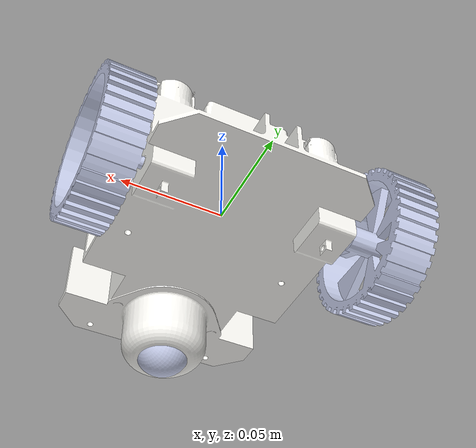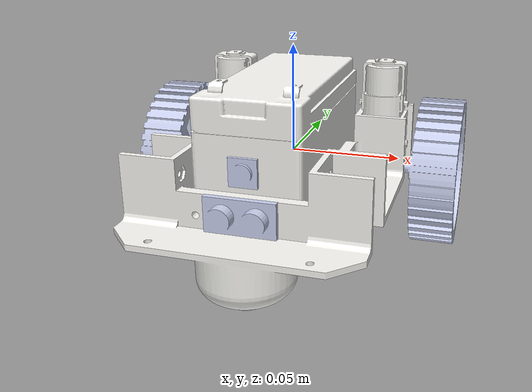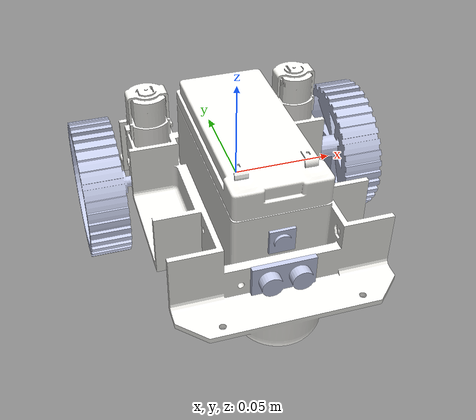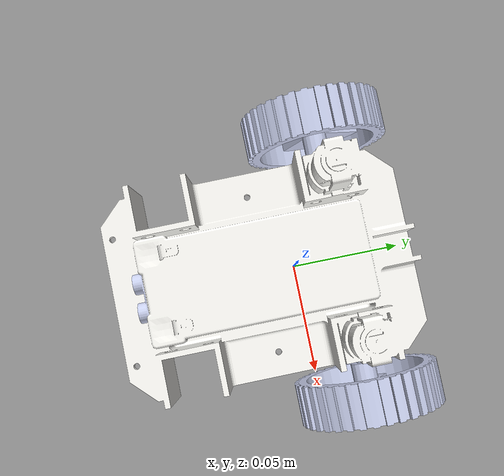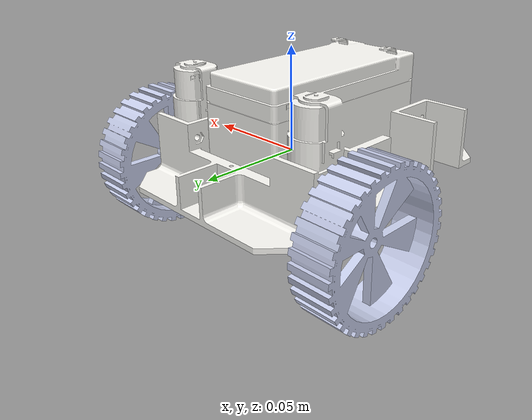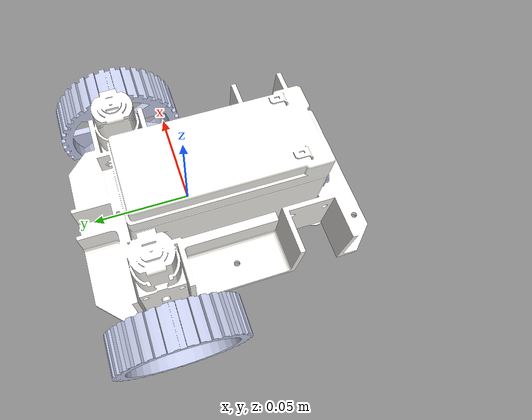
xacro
<?xml version="1.0" encoding="utf-8"?>
<robot xmlns:xacro="http://ros.org/wiki/xacro" name="uavcar">
<xacro:include filename="$(find uavionics_workshop2)/urdf/gazebo_plugin.xacro" />

  <material name = "black">
		<color rgba="0 0 0 1"/>
	</material>
	<material name = "red">
		<color rgba="1 0 0 1"/>
	</material>
	<material name = "green">
		<color rgba="0 1 0 1"/>
	</material>
	<material name = "blue">
		<color rgba="0 0 1 1"/>
	</material>
	<material name = "yellow">
		<color rgba="1 1 0 1"/>
	</material>
	<material name = "white">
		<color rgba="1 1 1 1"/>
	</material>

  <link
    name="base_link">
    <inertial>
      <origin
        xyz="-3.28475455401397E-06 -0.000998760054247713 0.00060735367389868"
        rpy="0 0 0" />
      <mass
        value="0.38105520656002" />
      <inertia
        ixx="0.000472947077248781"
        ixy="1.2692018595379E-09"
        ixz="7.75196238075727E-11"
        iyy="0.00034676867412049"
        iyz="-1.5941325677433E-05"
        izz="0.000750964235400176" />
    </inertial>
    <visual>
      <origin
        xyz="0 -0.013 -0.007"
        rpy="0 0 0" />
      <geometry>
        <mesh
          filename="package://uavionics_workshop2/meshes/base_link_visual.STL" />
      </geometry>
      <material
        name="">
        <color
          rgba="0.984313725490196 0.980392156862745 0.96078431372549 1" />
      </material>
    </visual>
    <collision>
      <origin
        xyz="0 0 0"
        rpy="0 0 0" />
      <geometry>
        <mesh
          filename="package://uavionics_workshop2/meshes/base_link_collision.STL" />
      </geometry>
    </collision>
  </link>
  <!-- Ball caster -->
  <link
    name="caster_link">
    <inertial>
      <origin
        xyz="-8.1315E-20 0 0"
        rpy="0 0 0" />
      <mass
        value="0.011494" />
      <inertia
        ixx="9.0113E-07"
        ixy="2.6915E-23"
        ixz="-7.1681E-23"
        iyy="9.0113E-07"
        iyz="-9.0241E-24"
        izz="9.0113E-07" />
    </inertial>
    <visual>
      <origin
        xyz="0 0 0"
        rpy="0 0 0" />
      <geometry>
        <mesh
          filename="package://uavionics_workshop2/meshes/caster_link.STL" />
      </geometry>
      <material
        name="">
        <color
          rgba="0.79216 0.81961 0.93333 1" />
      </material>
    </visual>
    <collision>
      <origin
        xyz="0 0 0"
        rpy="0 0 0" />
      <geometry>
        <mesh
          filename="package://uavionics_workshop2/meshes/caster_link.STL" />
      </geometry>
    </collision>
  </link>
  <joint
    name="caster_joint"
    type="continuous">
    <origin
      xyz="-0.00024045 -0.065116 -0.032659"
      rpy="1.5708 0 0" />
    <parent
      link="base_link" />
    <child
      link="caster_link" />
    <axis
      xyz="0 0 0" />
  </joint>

  <!-- Left wheel -->
    <link
    name="left_wheel_link">
    <inertial>
      <origin
        xyz="-7.3642E-14 1.2624E-12 0.030063"
        rpy="0 0 0" />
      <mass
        value="0.064596" />
      <inertia
        ixx="1.864E-05"
        ixy="-9.0163E-12"
        ixz="4.8348E-17"
        iyy="1.864E-05"
        iyz="-8.5442E-16"
        izz="3.2943E-05" />
    </inertial>
    <visual>
      <origin
        xyz="0 0 0"
        rpy="0 -1.57 0" />
      <geometry>
        <mesh
          filename="package://uavionics_workshop2/meshes/left_wheel_link_visual.STL" />
      </geometry>
      <material
        name="">
        <color
          rgba="0.79216 0.81961 0.93333 1" />
      </material>
    </visual>
    <collision>
      <origin
        xyz="0 0 0"
        rpy="0 0 0" />
      <geometry>
        <mesh
          filename="package://uavionics_workshop2/meshes/left_wheel_link_collision.STL" />
      </geometry>
    </collision>
  </link>
  <joint
    name="left_wheel_joint"
    type="continuous">
    <origin
      xyz="0.03232 0.02433 -0.012594"
      rpy="-1.5708 0 -1.5708" />
    <parent
      link="base_link" />
    <child
      link="left_wheel_link" />
    <axis
      xyz="0 0 1" />
  </joint>
  <!-- Right wheel -->
  <link
    name="right_wheel_link">
    <inertial>
      <origin
        xyz="-7.2525E-14 -1.2626E-12 -0.030063"
        rpy="0 0 0" />
      <mass
        value="0.064596" />
      <inertia
        ixx="1.864E-05"
        ixy="9.0163E-12"
        ixz="-4.8448E-17"
        iyy="1.864E-05"
        iyz="-8.5442E-16"
        izz="3.2943E-05" />
    </inertial>
    <visual>
      <origin
        xyz="0 0 0"
        rpy="0 1.57 0" />
      <geometry>
        <mesh
          filename="package://uavionics_workshop2/meshes/right_wheel_link_visual.STL" />
      </geometry>
      <material
        name="">
        <color
          rgba="0.79216 0.81961 0.93333 1" />
      </material>
    </visual>
    <collision>
      <origin
        xyz="0 0 0"
        rpy="0 0 0" />
      <geometry>
        <mesh
          filename="package://uavionics_workshop2/meshes/right_wheel_link_collision.STL" />
      </geometry>
    </collision>
  </link>
  <joint
    name="right_wheel_joint"
    type="continuous">
    <origin
      xyz="-0.03232 0.02433 -0.012594"
      rpy="1.5708 0 1.5708" />
    <parent
      link="base_link" />
    <child
      link="right_wheel_link" />
    <axis
      xyz="0 0 1" />
  </joint>
<!-- Ultrasonic sensor -->
  <link
    name="ultrasonic_link">
    <inertial>
      <origin
        xyz="1.7697E-05 0.002797 3.8953E-06"
        rpy="0 0 0" />
      <mass
        value="0.0019064" />
      <inertia
        ixx="3.4686E-08"
        ixy="8.5467E-11"
        ixz="6.2881E-11"
        iyy="1.5347E-07"
        iyz="1.8914E-11"
        izz="1.3618E-07" />
    </inertial>
    <visual>
      <origin
        xyz="0.011 0 0"
        rpy="0 0 -1.57" />
      <geometry>
        <mesh
          filename="package://uavionics_workshop2/meshes/ultrasonic_link.STL" />
      </geometry>
      <material
        name="">
        <color
          rgba="0.79216 0.81961 0.93333 1" />
      </material>
    </visual>
    <collision>
      <origin
        xyz="0 0 0"
        rpy="0 0 0" />
      <geometry>
        <mesh
          filename="package://uavionics_workshop2/meshes/ultrasonic_link.STL" />
      </geometry>
    </collision>
  </link>
  <joint
    name="ultrasonic_joint"
    type="fixed">
    <origin
      xyz="0 -0.05827 -0.0045938"
      rpy="0 0 -1.57" />
    <parent
      link="base_link" />
    <child
      link="ultrasonic_link" />
    <axis
      xyz="0 0 0" />
  </joint>
  <!-- Camera -->
  <link
    name="camera_link">
    <inertial>
      <origin
        xyz="-1.7521E-16 0.0011504 -9.5353E-08"
        rpy="0 0 0" />
      <mass
        value="0.00028743" />
      <inertia
        ixx="3.0682E-09"
        ixy="-9.4191E-24"
        ixz="1.6544E-25"
        iyy="5.7822E-09"
        iyz="-1.0998E-25"
        izz="3.0682E-09" />
    </inertial>
    <visual>
      <origin
        xyz="0.016 0 0"
        rpy="0 0 -1.57" />
      <geometry>
        <mesh
          filename="package://uavionics_workshop2/meshes/camera_link.STL" />
      </geometry>
      <material
        name="">
        <color
          rgba="0.79216 0.81961 0.93333 1" />
      </material>
    </visual>
    <collision>
      <origin
        xyz="0 0 0"
        rpy="0 0 0" />
      <geometry>
        <mesh
          filename="package://uavionics_workshop2/meshes/camera_link.STL" />
      </geometry>
    </collision>
  </link>
  <joint
    name="camera_joint"
    type="fixed">
    <origin
      xyz="0 -0.04927 0.011896"
      rpy="0 0 -1.57" />
    <parent
      link="base_link" />
    <child
      link="camera_link" />
    <axis
      xyz="0 0 0" />
  </joint>

  <transmission name="left_wheel_trans">
    <type>transmission_interface/SimpleTransmission</type>
    <joint name="left_wheel_joint">
      <hardwareInterface>hardware_interface/VelocityJointInterface</hardwareInterface>
    </joint>
    <actuator name="L_motor">
      <hardwareInterface>hardware_interface/VelocityJointInterface</hardwareInterface>
      <mechanicalReduction>1</mechanicalReduction>
    </actuator>
  </transmission>

  <transmission name="right_wheel_trans">
    <type>transmission_interface/SimpleTransmission</type>
    <joint name="right_wheel_joint">
      <hardwareInterface>hardware_interface/VelocityJointInterface</hardwareInterface>
    </joint>
    <actuator name="R_motor">
      <hardwareInterface>hardware_interface/VelocityJointInterface</hardwareInterface>
      <mechanicalReduction>1</mechanicalReduction>
    </actuator>
  </transmission>

</robot>
